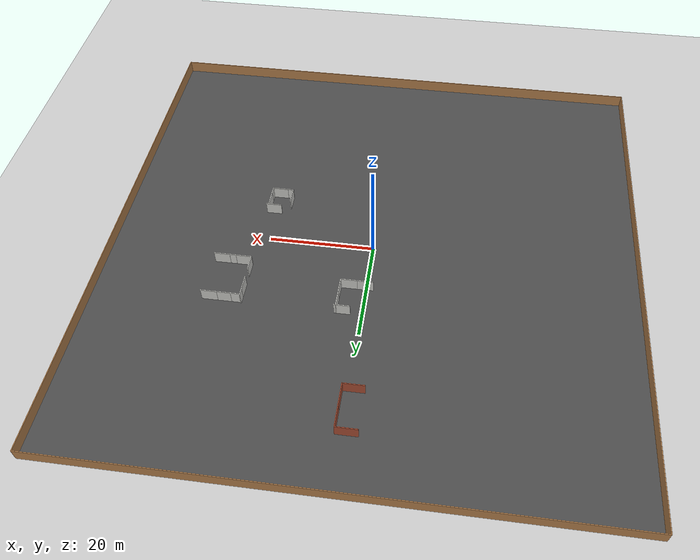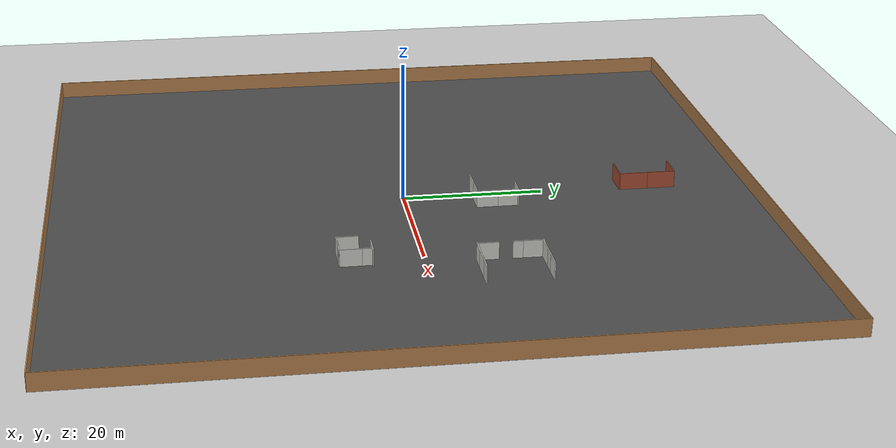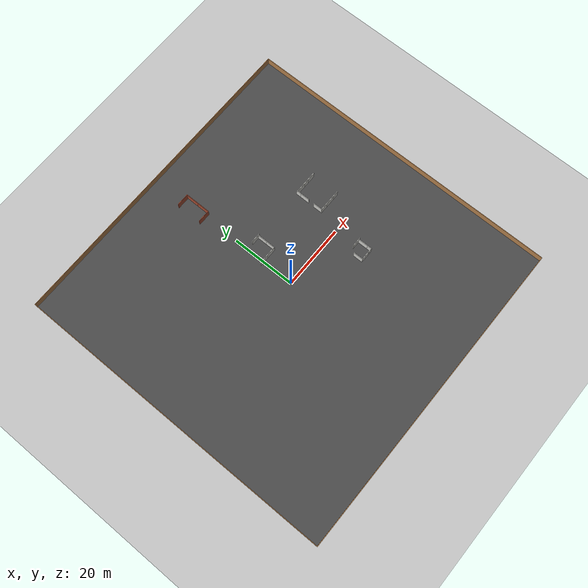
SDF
<sdf version="1.6">
 <world name="default">
  <model name="ground_plane">
   <static>1</static>
   <link name="link">
    <collision name="collision">
     <geometry><plane><normal>0 0 1</normal><size>100 100</size></plane></geometry>
     <surface><friction><ode><mu>100</mu><mu2>50</mu2></ode></friction></surface>
    </collision>
    <visual name="visual">
     <cast_shadows>0</cast_shadows>
     <geometry><plane><normal>0 0 1</normal><size>100 100</size></plane></geometry>
     <material>
      <script><uri>file://media/materials/scripts/gazebo.material</uri><name>Gazebo/Grey</name></script>
     </material>
    </visual>
   </link>
  </model>
  <model name="map_frame">
   <link name="Wall_0">
    <collision name="Wall_0_Collision">
     <geometry><box><size>100.05 0.15 2.5</size></box></geometry>
     <pose>0 0 1.25 0 -0 0</pose>
    </collision>
    <visual name="Wall_0_Visual">
     <pose>0 0 1.25 0 -0 0</pose>
     <geometry><box><size>100.05 0.15 2.5</size></box></geometry>
     <material>
      <script><uri>file://media/materials/scripts/gazebo.material</uri><name>Gazebo/Wood</name></script>
      <ambient>1 1 1 1</ambient>
     </material>
    </visual>
    <pose>0 50 0 0 -0 0</pose>
   </link>
   <link name="Wall_1">
    <collision name="Wall_1_Collision">
     <geometry><box><size>100.05 0.15 2.5</size></box></geometry>
     <pose>0 0 1.25 0 -0 0</pose>
    </collision>
    <visual name="Wall_1_Visual">
     <pose>0 0 1.25 0 -0 0</pose>
     <geometry><box><size>100.05 0.15 2.5</size></box></geometry>
     <material>
      <script><uri>file://media/materials/scripts/gazebo.material</uri><name>Gazebo/Wood</name></script>
      <ambient>1 1 1 1</ambient>
     </material>
    </visual>
    <pose>50 0 0 0 0 -1.5708</pose>
   </link>
   <link name="Wall_2">
    <collision name="Wall_2_Collision">
     <geometry><box><size>100.05 0.15 2.5</size></box></geometry>
     <pose>0 0 1.25 0 -0 0</pose>
    </collision>
    <visual name="Wall_2_Visual">
     <pose>0 0 1.25 0 -0 0</pose>
     <geometry><box><size>100.05 0.15 2.5</size></box></geometry>
     <material>
      <script><uri>file://media/materials/scripts/gazebo.material</uri><name>Gazebo/Wood</name></script>
      <ambient>1 1 1 1</ambient>
     </material>
    </visual>
    <pose>0 -50 0 0 -0 3.14159</pose>
   </link>
   <link name="Wall_3">
    <collision name="Wall_3_Collision">
     <geometry><box><size>100.05 0.15 2.5</size></box></geometry>
     <pose>0 0 1.25 0 -0 0</pose>
    </collision>
    <visual name="Wall_3_Visual">
     <pose>0 0 1.25 0 -0 0</pose>
     <geometry><box><size>100.05 0.15 2.5</size></box></geometry>
     <material>
      <script><uri>file://media/materials/scripts/gazebo.material</uri><name>Gazebo/Wood</name></script>
      <ambient>1 1 1 1</ambient>
     </material>
    </visual>
    <pose>-50 0 0 0 -0 1.5708</pose>
   </link>
   <static>1</static>
  </model>
  <model name="asphalt_plane">
   <static>1</static>
   <link name="link">
    <collision name="collision"><geometry><box><size>100 100 0.1</size></box></geometry></collision>
    <visual name="visual">
     <cast_shadows>0</cast_shadows>
     <geometry><box><size>100 100 0.1</size></box></geometry>
     <material>
      <script>
       <uri>model://asphalt_plane/materials/scripts</uri>
       <uri>model://asphalt_plane/materials/textures</uri>
       <name>vrc/asphalt</name>
      </script>
     </material>
    </visual>
   </link>
  </model>
  <model name="concrete_wall_1">
   <pose>4.66601 14.331 0 0 -0 0</pose>
   <link name="Wall_0">
    <collision name="Wall_0_Collision">
     <geometry><box><size>3 0.15 2.5</size></box></geometry>
     <pose>0 0 1.25 0 -0 0</pose>
    </collision>
    <visual name="Wall_0_Visual">
     <pose>0 0 1.25 0 -0 0</pose>
     <geometry><box><size>3 0.15 2.5</size></box></geometry>
     <material>
      <script><uri>file://media/materials/scripts/gazebo.material</uri><name>Gazebo/CeilingTiled</name></script>
      <ambient>1 1 1 1</ambient>
     </material>
     <meta><layer>0</layer></meta>
    </visual>
    <pose>0 0 0 0 -0 1.5708</pose>
   </link>
   <static>1</static>
  </model>
  <model name="concrete_wall_2">
   <pose>4.66901 11.3398 0 0 -0 0</pose>
   <link name="Wall_0">
    <collision name="Wall_0_Collision">
     <geometry><box><size>3 0.15 2.5</size></box></geometry>
     <pose>0 0 1.25 0 -0 0</pose>
    </collision>
    <visual name="Wall_0_Visual">
     <pose>0 0 1.25 0 -0 0</pose>
     <geometry><box><size>3 0.15 2.5</size></box></geometry>
     <material>
      <script><uri>file://media/materials/scripts/gazebo.material</uri><name>Gazebo/CeilingTiled</name></script>
      <ambient>1 1 1 1</ambient>
     </material>
     <meta><layer>0</layer></meta>
    </visual>
    <pose>0 0 0 0 -0 1.5708</pose>
   </link>
   <static>1</static>
  </model>
  <model name="concrete_wall_6_clone_1">
   <pose>20.7484 -7.01357 0 0 -0 1.57079</pose>
   <link name="Wall_0">
    <collision name="Wall_0_Collision">
     <geometry><box><size>3 0.15 2.5</size></box></geometry>
     <pose>0 0 1.25 0 -0 0</pose>
    </collision>
    <visual name="Wall_0_Visual">
     <pose>0 0 1.25 0 -0 0</pose>
     <geometry><box><size>3 0.15 2.5</size></box></geometry>
     <material>
      <script><uri>file://media/materials/scripts/gazebo.material</uri><name>Gazebo/CeilingTiled</name></script>
      <ambient>1 1 1 1</ambient>
     </material>
     <meta><layer>0</layer></meta>
    </visual>
    <pose>0 0 0 0 -0 1.5708</pose>
   </link>
   <static>1</static>
  </model>
  <model name="concrete_wall_6_clone_2">
   <pose>20.3039 -11.4446 0 0 -0 1.57079</pose>
   <link name="Wall_0">
    <collision name="Wall_0_Collision">
     <geometry><box><size>3 0.15 2.5</size></box></geometry>
     <pose>0 0 1.25 0 -0 0</pose>
    </collision>
    <visual name="Wall_0_Visual">
     <pose>0 0 1.25 0 -0 0</pose>
     <geometry><box><size>3 0.15 2.5</size></box></geometry>
     <material>
      <script><uri>file://media/materials/scripts/gazebo.material</uri><name>Gazebo/CeilingTiled</name></script>
      <ambient>1 1 1 1</ambient>
     </material>
     <meta><layer>0</layer></meta>
    </visual>
    <pose>0 0 0 0 -0 1.5708</pose>
   </link>
   <static>1</static>
  </model>
  <model name="concrete_wall_6_clone_3">
   <pose>19.1368 -11.4558 0 0 -0 1.57079</pose>
   <link name="Wall_0">
    <collision name="Wall_0_Collision">
     <geometry><box><size>3 0.15 2.5</size></box></geometry>
     <pose>0 0 1.25 0 -0 0</pose>
    </collision>
    <visual name="Wall_0_Visual">
     <pose>0 0 1.25 0 -0 0</pose>
     <geometry><box><size>3 0.15 2.5</size></box></geometry>
     <material>
      <script><uri>file://media/materials/scripts/gazebo.material</uri><name>Gazebo/CeilingTiled</name></script>
      <ambient>1 1 1 1</ambient>
     </material>
     <meta><layer>0</layer></meta>
    </visual>
    <pose>0 0 0 0 -0 1.5708</pose>
   </link>
   <static>1</static>
  </model>
  <model name="concrete_wall_7">
   <pose>17.7318 -9.91545 0 0 -0 0</pose>
   <link name="Wall_0">
    <collision name="Wall_0_Collision">
     <geometry><box><size>3 0.15 2.5</size></box></geometry>
     <pose>0 0 1.25 0 -0 0</pose>
    </collision>
    <visual name="Wall_0_Visual">
     <pose>0 0 1.25 0 -0 0</pose>
     <geometry><box><size>3 0.15 2.5</size></box></geometry>
     <material>
      <script><uri>file://media/materials/scripts/gazebo.material</uri><name>Gazebo/CeilingTiled</name></script>
      <ambient>1 1 1 1</ambient>
     </material>
     <meta><layer>0</layer></meta>
    </visual>
    <pose>0 0 0 0 -0 1.5708</pose>
   </link>
   <static>1</static>
  </model>
  <model name="concrete_wall_8">
   <pose>21.7794 -9.93205 0 0 -0 0</pose>
   <link name="Wall_0">
    <collision name="Wall_0_Collision">
     <geometry><box><size>3 0.15 2.5</size></box></geometry>
     <pose>0 0 1.25 0 -0 0</pose>
    </collision>
    <visual name="Wall_0_Visual">
     <pose>0 0 1.25 0 -0 0</pose>
     <geometry><box><size>3 0.15 2.5</size></box></geometry>
     <material>
      <script><uri>file://media/materials/scripts/gazebo.material</uri><name>Gazebo/CeilingTiled</name></script>
      <ambient>1 1 1 1</ambient>
     </material>
     <meta><layer>0</layer></meta>
    </visual>
    <pose>0 0 0 0 -0 1.5708</pose>
   </link>
   <static>1</static>
  </model>
  <model name="concrete_wall_9">
   <pose>21.7635 -8.54711 0 0 -0 0</pose>
   <link name="Wall_0">
    <collision name="Wall_0_Collision">
     <geometry><box><size>3 0.15 2.5</size></box></geometry>
     <pose>0 0 1.25 0 -0 0</pose>
    </collision>
    <visual name="Wall_0_Visual">
     <pose>0 0 1.25 0 -0 0</pose>
     <geometry><box><size>3 0.15 2.5</size></box></geometry>
     <material>
      <script><uri>file://media/materials/scripts/gazebo.material</uri><name>Gazebo/CeilingTiled</name></script>
      <ambient>1 1 1 1</ambient>
     </material>
     <meta><layer>0</layer></meta>
    </visual>
    <pose>0 0 0 0 -0 1.5708</pose>
   </link>
   <static>1</static>
  </model>
  <model name="concrete_wall_6_clone_4">
   <pose>3.13686 9.88392 0 0 -0 1.57079</pose>
   <link name="Wall_0">
    <collision name="Wall_0_Collision">
     <geometry><box><size>3 0.15 2.5</size></box></geometry>
     <pose>0 0 1.25 0 -0 0</pose>
    </collision>
    <visual name="Wall_0_Visual">
     <pose>0 0 1.25 0 -0 0</pose>
     <geometry><box><size>3 0.15 2.5</size></box></geometry>
     <material>
      <script><uri>file://media/materials/scripts/gazebo.material</uri><name>Gazebo/CeilingTiled</name></script>
      <ambient>1 1 1 1</ambient>
     </material>
     <meta><layer>0</layer></meta>
    </visual>
    <pose>0 0 0 0 -0 1.5708</pose>
   </link>
   <static>1</static>
  </model>
  <model name="concrete_wall_6_clone_5">
   <pose>0.16157 9.88256 0 0 -0 1.57079</pose>
   <link name="Wall_0">
    <collision name="Wall_0_Collision">
     <geometry><box><size>3 0.15 2.5</size></box></geometry>
     <pose>0 0 1.25 0 -0 0</pose>
    </collision>
    <visual name="Wall_0_Visual">
     <pose>0 0 1.25 0 -0 0</pose>
     <geometry><box><size>3 0.15 2.5</size></box></geometry>
     <material>
      <script><uri>file://media/materials/scripts/gazebo.material</uri><name>Gazebo/CeilingTiled</name></script>
      <ambient>1 1 1 1</ambient>
     </material>
     <meta><layer>0</layer></meta>
    </visual>
    <pose>0 0 0 0 -0 1.5708</pose>
   </link>
   <static>1</static>
  </model>
  <model name="concrete_wall_6_clone_8">
   <pose>3.56787 15.7539 0 0 -0 1.57079</pose>
   <link name="Wall_0">
    <collision name="Wall_0_Collision">
     <geometry><box><size>3 0.15 2.5</size></box></geometry>
     <pose>0 0 1.25 0 -0 0</pose>
    </collision>
    <visual name="Wall_0_Visual">
     <pose>0 0 1.25 0 -0 0</pose>
     <geometry><box><size>3 0.15 2.5</size></box></geometry>
     <material>
      <script><uri>file://media/materials/scripts/gazebo.material</uri><name>Gazebo/CeilingTiled</name></script>
      <ambient>1 1 1 1</ambient>
     </material>
     <meta><layer>0</layer></meta>
    </visual>
    <pose>0 0 0 0 -0 1.5708</pose>
   </link>
   <static>1</static>
  </model>
  <model name="concrete_wall_6_clone_15">
   <pose>23.534 6.78202 0 0 -0 1.57079</pose>
   <link name="Wall_0">
    <collision name="Wall_0_Collision">
     <geometry><box><size>3 0.15 2.5</size></box></geometry>
     <pose>0 0 1.25 0 -0 0</pose>
    </collision>
    <visual name="Wall_0_Visual">
     <pose>0 0 1.25 0 -0 0</pose>
     <geometry><box><size>3 0.15 2.5</size></box></geometry>
     <material>
      <script><uri>file://media/materials/scripts/gazebo.material</uri><name>Gazebo/CeilingTiled</name></script>
      <ambient>1 1 1 1</ambient>
     </material>
     <meta><layer>0</layer></meta>
    </visual>
    <pose>0 0 0 0 -0 1.5708</pose>
   </link>
   <static>1</static>
  </model>
  <model name="concrete_wall_6_clone_16">
   <pose>25.863 6.76889 0 0 -0 1.57079</pose>
   <link name="Wall_0">
    <collision name="Wall_0_Collision">
     <geometry><box><size>3 0.15 2.5</size></box></geometry>
     <pose>0 0 1.25 0 -0 0</pose>
    </collision>
    <visual name="Wall_0_Visual">
     <pose>0 0 1.25 0 -0 0</pose>
     <geometry><box><size>3 0.15 2.5</size></box></geometry>
     <material>
      <script><uri>file://media/materials/scripts/gazebo.material</uri><name>Gazebo/CeilingTiled</name></script>
      <ambient>1 1 1 1</ambient>
     </material>
     <meta><layer>0</layer></meta>
    </visual>
    <pose>0 0 0 0 -0 1.5708</pose>
   </link>
   <static>1</static>
  </model>
  <model name="concrete_wall_6_clone_17">
   <pose>27.7288 6.77605 0 0 -0 1.57079</pose>
   <link name="Wall_0">
    <collision name="Wall_0_Collision">
     <geometry><box><size>3 0.15 2.5</size></box></geometry>
     <pose>0 0 1.25 0 -0 0</pose>
    </collision>
    <visual name="Wall_0_Visual">
     <pose>0 0 1.25 0 -0 0</pose>
     <geometry><box><size>3 0.15 2.5</size></box></geometry>
     <material>
      <script><uri>file://media/materials/scripts/gazebo.material</uri><name>Gazebo/CeilingTiled</name></script>
      <ambient>1 1 1 1</ambient>
     </material>
     <meta><layer>0</layer></meta>
    </visual>
    <pose>0 0 0 0 -0 1.5708</pose>
   </link>
   <static>1</static>
  </model>
  <model name="concrete_wall_6_clone_18">
   <pose>27.9453 15.6632 0 0 -0 1.57079</pose>
   <link name="Wall_0">
    <collision name="Wall_0_Collision">
     <geometry><box><size>3 0.15 2.5</size></box></geometry>
     <pose>0 0 1.25 0 -0 0</pose>
    </collision>
    <visual name="Wall_0_Visual">
     <pose>0 0 1.25 0 -0 0</pose>
     <geometry><box><size>3 0.15 2.5</size></box></geometry>
     <material>
      <script><uri>file://media/materials/scripts/gazebo.material</uri><name>Gazebo/CeilingTiled</name></script>
      <ambient>1 1 1 1</ambient>
     </material>
     <meta><layer>0</layer></meta>
    </visual>
    <pose>0 0 0 0 -0 1.5708</pose>
   </link>
   <static>1</static>
  </model>
  <model name="concrete_wall_6_clone_19">
   <pose>25.3933 15.6522 0 0 -0 1.57079</pose>
   <link name="Wall_0">
    <collision name="Wall_0_Collision">
     <geometry><box><size>3 0.15 2.5</size></box></geometry>
     <pose>0 0 1.25 0 -0 0</pose>
    </collision>
    <visual name="Wall_0_Visual">
     <pose>0 0 1.25 0 -0 0</pose>
     <geometry><box><size>3 0.15 2.5</size></box></geometry>
     <material>
      <script><uri>file://media/materials/scripts/gazebo.material</uri><name>Gazebo/CeilingTiled</name></script>
      <ambient>1 1 1 1</ambient>
     </material>
     <meta><layer>0</layer></meta>
    </visual>
    <pose>0 0 0 0 -0 1.5708</pose>
   </link>
   <static>1</static>
  </model>
  <model name="concrete_wall_6_clone_20">
   <pose>23.696 15.6424 0 0 -0 1.57079</pose>
   <link name="Wall_0">
    <collision name="Wall_0_Collision">
     <geometry><box><size>3 0.15 2.5</size></box></geometry>
     <pose>0 0 1.25 0 -0 0</pose>
    </collision>
    <visual name="Wall_0_Visual">
     <pose>0 0 1.25 0 -0 0</pose>
     <geometry><box><size>3 0.15 2.5</size></box></geometry>
     <material>
      <script><uri>file://media/materials/scripts/gazebo.material</uri><name>Gazebo/CeilingTiled</name></script>
      <ambient>1 1 1 1</ambient>
     </material>
     <meta><layer>0</layer></meta>
    </visual>
    <pose>0 0 0 0 -0 1.5708</pose>
   </link>
   <static>1</static>
  </model>
  <model name="concrete_wall_16">
   <pose>22.1252 8.21838 0 0 -0 0</pose>
   <link name="Wall_0">
    <collision name="Wall_0_Collision">
     <geometry><box><size>3 0.15 2.5</size></box></geometry>
     <pose>0 0 1.25 0 -0 0</pose>
    </collision>
    <visual name="Wall_0_Visual">
     <pose>0 0 1.25 0 -0 0</pose>
     <geometry><box><size>3 0.15 2.5</size></box></geometry>
     <material>
      <script><uri>file://media/materials/scripts/gazebo.material</uri><name>Gazebo/CeilingTiled</name></script>
      <ambient>1 1 1 1</ambient>
     </material>
     <meta><layer>0</layer></meta>
    </visual>
    <pose>0 0 0 0 -0 1.5708</pose>
   </link>
   <static>1</static>
  </model>
  <model name="concrete_wall_17">
   <pose>22.1327 13.047 0 0 -0 0</pose>
   <link name="Wall_0">
    <collision name="Wall_0_Collision">
     <geometry><box><size>3 0.15 2.5</size></box></geometry>
     <pose>0 0 1.25 0 -0 0</pose>
    </collision>
    <visual name="Wall_0_Visual">
     <pose>0 0 1.25 0 -0 0</pose>
     <geometry><box><size>3 0.15 2.5</size></box></geometry>
     <material>
      <script><uri>file://media/materials/scripts/gazebo.material</uri><name>Gazebo/CeilingTiled</name></script>
      <ambient>1 1 1 1</ambient>
     </material>
     <meta><layer>0</layer></meta>
    </visual>
    <pose>0 0 0 0 -0 1.5708</pose>
   </link>
   <static>1</static>
  </model>
  <model name="concrete_wall_18">
   <pose>22.1412 14.4159 0 0 -0 0</pose>
   <link name="Wall_0">
    <collision name="Wall_0_Collision">
     <geometry><box><size>3 0.15 2.5</size></box></geometry>
     <pose>0 0 1.25 0 -0 0</pose>
    </collision>
    <visual name="Wall_0_Visual">
     <pose>0 0 1.25 0 -0 0</pose>
     <geometry><box><size>3 0.15 2.5</size></box></geometry>
     <material>
      <script><uri>file://media/materials/scripts/gazebo.material</uri><name>Gazebo/CeilingTiled</name></script>
      <ambient>1 1 1 1</ambient>
     </material>
     <meta><layer>0</layer></meta>
    </visual>
    <pose>0 0 0 0 -0 1.5708</pose>
   </link>
   <static>1</static>
  </model>
  <model name="brick_wall_2">
   <pose>-0.863663 31.3819 0 0 -0 0</pose>
   <link name="Wall_0">
    <collision name="Wall_0_Collision">
     <geometry><box><size>4 0.15 2.5</size></box></geometry>
     <pose>0 0 1.25 0 -0 0</pose>
    </collision>
    <visual name="Wall_0_Visual">
     <pose>0 0 1.25 0 -0 0</pose>
     <geometry><box><size>4 0.15 2.5</size></box></geometry>
     <material>
      <script><uri>file://media/materials/scripts/gazebo.material</uri><name>Gazebo/Bricks</name></script>
      <ambient>1 1 1 1</ambient>
     </material>
     <meta><layer>0</layer></meta>
    </visual>
   </link>
   <static>1</static>
  </model>
  <model name="brick_wall_2_clone_3">
   <pose>-0.863663 39.3819 0 0 -0 0</pose>
   <link name="Wall_0">
    <collision name="Wall_0_Collision">
     <geometry><box><size>4 0.15 2.5</size></box></geometry>
     <pose>0 0 1.25 0 -0 0</pose>
    </collision>
    <visual name="Wall_0_Visual">
     <pose>0 0 1.25 0 -0 0</pose>
     <geometry><box><size>4 0.15 2.5</size></box></geometry>
     <material>
      <script><uri>file://media/materials/scripts/gazebo.material</uri><name>Gazebo/Bricks</name></script>
      <ambient>1 1 1 1</ambient>
     </material>
     <meta><layer>0</layer></meta>
    </visual>
   </link>
   <static>1</static>
  </model>
  <model name="brick_wall_3">
   <pose>1.06218 33.4428 0 0 -0 1.57079</pose>
   <link name="Wall_0">
    <collision name="Wall_0_Collision">
     <geometry><box><size>4 0.15 2.5</size></box></geometry>
     <pose>0 0 1.25 0 -0 0</pose>
    </collision>
    <visual name="Wall_0_Visual">
     <pose>0 0 1.25 0 -0 0</pose>
     <geometry><box><size>4 0.15 2.5</size></box></geometry>
     <material>
      <script><uri>file://media/materials/scripts/gazebo.material</uri><name>Gazebo/Bricks</name></script>
      <ambient>1 1 1 1</ambient>
     </material>
     <meta><layer>0</layer></meta>
    </visual>
   </link>
   <static>1</static>
  </model>
  <model name="brick_wall_3_clone">
   <pose>1.06218 37.4428 0 0 -0 1.57079</pose>
   <link name="Wall_0">
    <collision name="Wall_0_Collision">
     <geometry><box><size>4 0.15 2.5</size></box></geometry>
     <pose>0 0 1.25 0 -0 0</pose>
    </collision>
    <visual name="Wall_0_Visual">
     <pose>0 0 1.25 0 -0 0</pose>
     <geometry><box><size>4 0.15 2.5</size></box></geometry>
     <material>
      <script><uri>file://media/materials/scripts/gazebo.material</uri><name>Gazebo/Bricks</name></script>
      <ambient>1 1 1 1</ambient>
     </material>
     <meta><layer>0</layer></meta>
    </visual>
   </link>
   <static>1</static>
  </model>
 </world>
</sdf>
